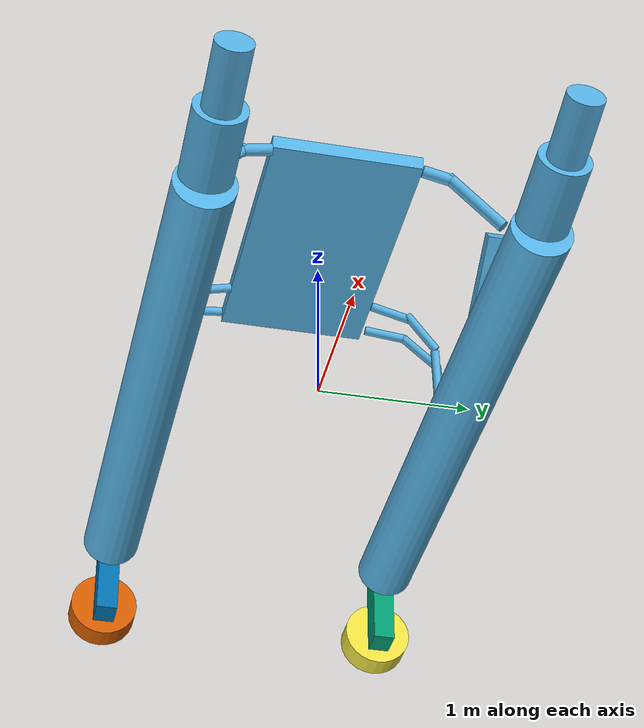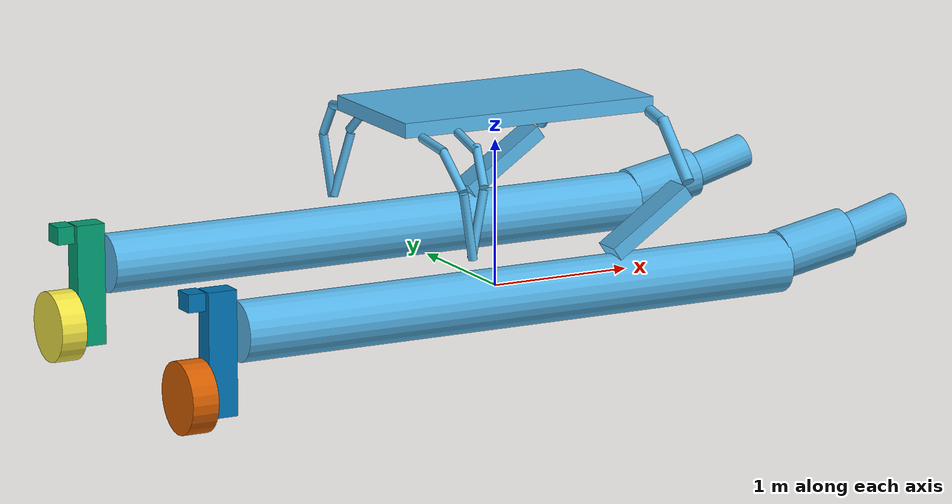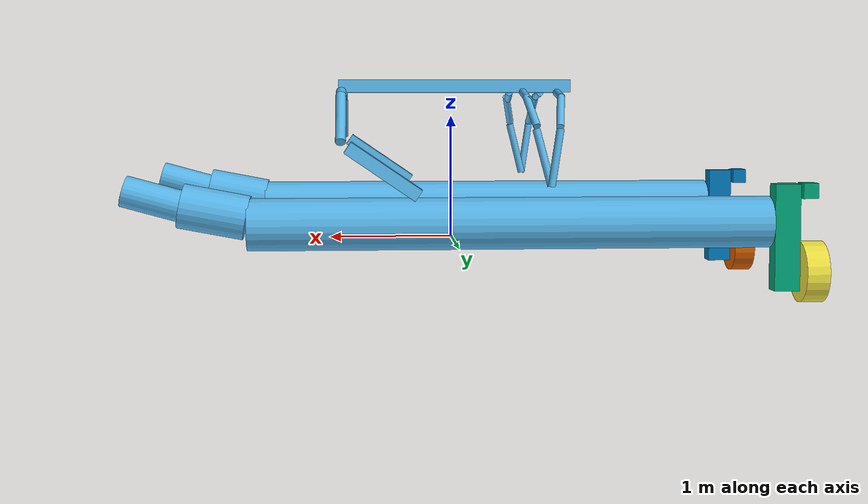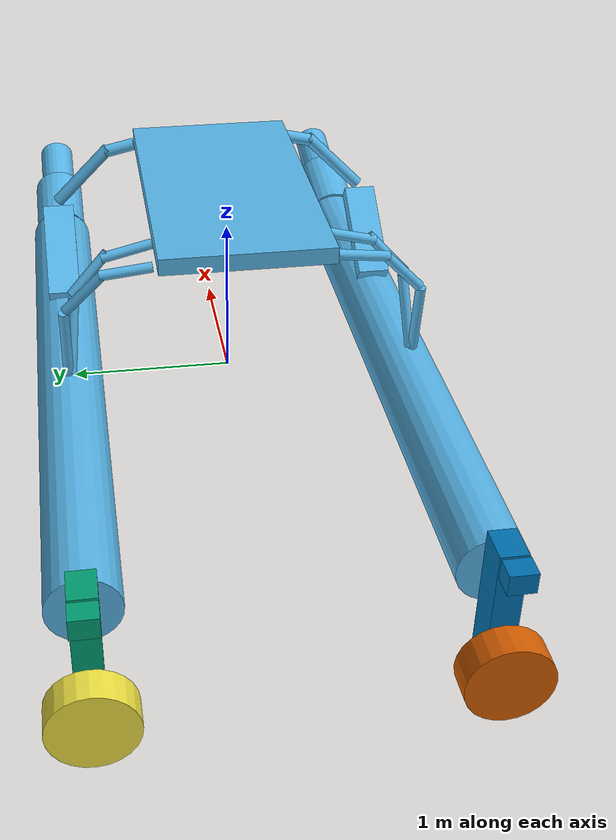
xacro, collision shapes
<?xml version="1.0"?>
<robot xmlns:xacro="http://ros.org/wiki/xacro" name="wam-v">
  <!-- Load base model (just include is enough) -->
  <xacro:include filename="$(find wamv_description)/urdf/engine/engine.urdf.xacro"/>

  <!-- Load engine macro -->
  <xacro:include filename="$(find wamv_description)/urdf/base/wamv_base.urdf.xacro"/>

  <!-- Describe engine -->
  <!-- Thruster Config -->
  <xacro:arg name="thruster_config" default="H"/>
  <xacro:property name="th_config" value="$(arg thruster_config)"/>

  <xacro:if value="${th_config == 'H'}">
    <xacro:engine prefix="left" position="-2.373776 1.027135 0.318237" />
    <xacro:engine prefix="right" position="-2.373776 -1.027135 0.318237" />
  </xacro:if>
  <xacro:if value="${th_config == 'T'}">
    <xacro:engine prefix="left" position="-2.373776 1.027135 0.318237" />
    <xacro:engine prefix="right" position="-2.373776 -1.027135 0.318237" />
    <xacro:engine prefix="lateral" position="0.0 0.0 0.318237" orientation="0.0 0.0 1.5707"/>
  </xacro:if>
  <xacro:if value="${th_config == 'X'}">
    <xacro:engine prefix="left_rear" position="-2.373776 1.027135 0.318237"  orientation="0.0 0.0 0.785"/>
    <xacro:engine prefix="right_rear" position="-2.373776 -1.027135 0.318237" orientation="0.0 0.0 -0.785"/>
    <xacro:engine prefix="left_front" position="1.6 0.7  0.25" orientation="0.0 0.0 -0.785"/>
    <xacro:engine prefix="right_front" position="1.6 -0.7 0.25" orientation="0.0 0.0 +0.785"/>
  </xacro:if>

</robot>

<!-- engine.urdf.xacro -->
<robot xmlns:xacro="http://ros.org/wiki/xacro" name="wam-v-two-engines">

<xacro:include filename="$(find wamv_description)/urdf/engine/engine.transmission.xacro"/>

  <!-- Macro for inserting an engine with its propeller. -->
  <xacro:macro name="engine" params="prefix position:='0 0 0' orientation:='0 0 0'">
    <link name="${prefix}_engine_link">
      <visual>
        <geometry>
          <mesh filename="package://wamv_description/mesh/engine.dae"/>
        </geometry>
      </visual>
      <collision name="${prefix}_engine_vertical_axis_collision">
        <origin xyz="-0.16 0 -0.24" rpy="0 0 0" />
        <geometry>
          <box size="0.2 0.15 0.83" />
        </geometry>
      </collision>
      <collision name="${prefix}_engine_rear_end_collision">
        <origin xyz="-0.34 0 0.12" rpy="0 0 0" />
        <geometry>
          <box size="0.12 0.15 0.12" />
        </geometry>
      </collision>
      <inertial>
        <mass value="15"/>
        <inertia ixx="0.889245" ixy="0.0" ixz="0.0" iyy="0.911125" iyz="0.0" izz="0.078125"/>
      </inertial>
    </link>

    <link name="${prefix}_propeller_link">
      <visual>
        <geometry>
          <mesh filename="package://wamv_description/mesh/propeller.dae"/>
        </geometry>
      </visual>
      <collision name="${prefix}_propeller_collision">
        <origin xyz="-0.08 0 0" rpy="0 1.57 0" />
        <geometry>
          <cylinder length="0.18" radius="0.24" />
        </geometry>
      </collision>
      <inertial>
        <mass value="0.5"/>
        <inertia ixx="0.008545" ixy="0.0" ixz="0.0" iyy="0.008545" iyz="0.0" izz="0.0144"/>
      </inertial>
    </link>

    <joint name="${prefix}_chasis_engine_joint" type="revolute">
      <origin xyz="${position}" rpy="${orientation}"/>
      <parent link="base_link"/>
      <child link="${prefix}_engine_link"/>
      <axis rpy="0 0 0" xyz="0 0 1"/>
      <dynamics damping="0.7" friction="0.7"/>
      <limit effort="10.0" lower="${-3*pi/4}" upper="${3*pi/4}" velocity="${pi/2}"/>
    </joint>

    <joint name="${prefix}_engine_propeller_joint" type="continuous">
      <axis rpy="0 0 0" xyz="1 0 0"/>
      <parent link="${prefix}_engine_link"/>
      <child link="${prefix}_propeller_link"/>
      <origin rpy="0 0 0" xyz="-0.278156 0 -0.509371"/>
      <limit effort="100" velocity="100" />
      <dynamics friction="0.05" damping="0.05" />
    </joint>
  </xacro:macro>

</robot>

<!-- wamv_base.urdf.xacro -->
<robot xmlns:xacro="http://ros.org/wiki/xacro" name="wam-v">
  <!-- Macro for creating the main collisions as simple shapes. -->
  <xacro:macro name="main_collisions" params="prefix reflect:=1">
    <!-- Main float -->
    <collision name="${prefix}_float">
      <origin xyz="-0.4 ${1.03*reflect} 0.2" rpy="${0*reflect} 1.57 0" />
      <geometry>
        <cylinder length="4" radius="0.2" />
      </geometry>
    </collision>
    <collision name="${prefix}_mid_float">
      <origin xyz="1.85 ${1.03*reflect} 0.3" rpy="${0*reflect} 1.38 0" />
      <geometry>
        <cylinder length="0.5" radius="0.17" />
      </geometry>
    </collision>
    <collision name="${prefix}_front_float">
      <origin xyz="2.3 ${1.03*reflect} 0.4" rpy="${0*reflect} 1.3 0" />
      <geometry>
        <cylinder length="0.45" radius="0.12" />
      </geometry>
    </collision>

    <!-- Front beam -->
    <collision name="front_${prefix}_beam_lower">
      <origin xyz="0.9 ${0.85*reflect} 1" rpy="${0.78*reflect} 0 0" />
      <geometry>
        <cylinder length="0.5" radius="0.04" />
      </geometry>
    </collision>

    <collision name="front_${prefix}_beam_upper">
      <origin xyz="0.9 ${0.6*reflect} 1.18" rpy="${1.35*reflect} 0 0" />
      <geometry>
        <cylinder length="0.2" radius="0.04" />
      </geometry>
    </collision>

    <!-- Mid beam -->
    <collision name="mid_${prefix}_beam_lower">
      <origin xyz="-0.65 ${0.99*reflect} 0.7" rpy="${0.1*reflect} 0.25 0" />
      <geometry>
        <cylinder length="0.45" radius="0.03" />
      </geometry>
    </collision>

    <collision name="mid_${prefix}_beam_medium">
      <origin xyz="-0.57 ${0.87*reflect} 1.05" rpy="${0.75*reflect} 0.25 0" />
      <geometry>
        <cylinder length="0.32" radius="0.03" />
      </geometry>
    </collision>

    <collision name="mid_${prefix}_beam_upper">
      <origin xyz="-0.55 ${0.65*reflect} 1.17" rpy="${1.35*reflect} 0.25 0" />
      <geometry>
        <cylinder length="0.3" radius="0.03" />
      </geometry>
    </collision>

    <!-- Rear beam -->
    <collision name="rear_${prefix}_beam_lower">
      <origin xyz="-0.74 ${1.03*reflect} 0.7" rpy="${0*reflect} -0.15 0" />
      <geometry>
        <cylinder length="0.45" radius="0.03" />
      </geometry>
    </collision>

    <collision name="rear_${prefix}_beam_medium">
      <origin xyz="-0.79 ${0.91*reflect} 1.05" rpy="${0.75*reflect} -0.15 0" />
      <geometry>
        <cylinder length="0.32" radius="0.03" />
      </geometry>
    </collision>

    <collision name="rear_${prefix}_beam_upper">
      <origin xyz="-0.81 ${0.67*reflect} 1.18" rpy="${1.45*reflect} -0.15 0" />
      <geometry>
        <cylinder length="0.3" radius="0.03" />
      </geometry>
    </collision>

    <!-- Joint -->
    <collision name="${prefix}_joint">
      <origin xyz="0.58 ${1.03*reflect} 0.6" rpy="${0*reflect} -0.6 0" />
      <geometry>
        <box size="0.65 0.2 0.1" />
      </geometry>
    </collision>
  </xacro:macro>

  <!-- base_footprint link -->
  <link name="base_footprint"/>
  <joint name="base_footprint_to_base_link" type="fixed">
    <parent link="base_footprint"/>
    <child link="base_link"/>
  </joint>

  <!-- Basic model of the 16' WAM-V USV -->
  <link name="base_link">
    <visual>
      <geometry>
        <mesh filename="package://wamv_description/mesh/WAM-V-Base.dae"/>
      </geometry>
    </visual>

    <!-- Left base collisions -->
    <xacro:main_collisions prefix="left" reflect="1" />

    <!-- Right side collisions -->
    <xacro:main_collisions prefix="right" reflect="-1" />

     <!-- Top base -->
    <collision name="top_base">
      <origin xyz="0 -0 1.25" rpy="0 0 0" />
      <geometry>
        <box size="1.85 1 0.1" />
      </geometry>
    </collision>

    <inertial>
      <!-- From WAM-V spec sheet -->
      <mass value="180.0"/>
      <inertia ixx="120.0" ixy="0.0" ixz="0.0" iyy="393" iyz="0.0" izz="446.0"/>
    </inertial>
  </link>

</robot>
